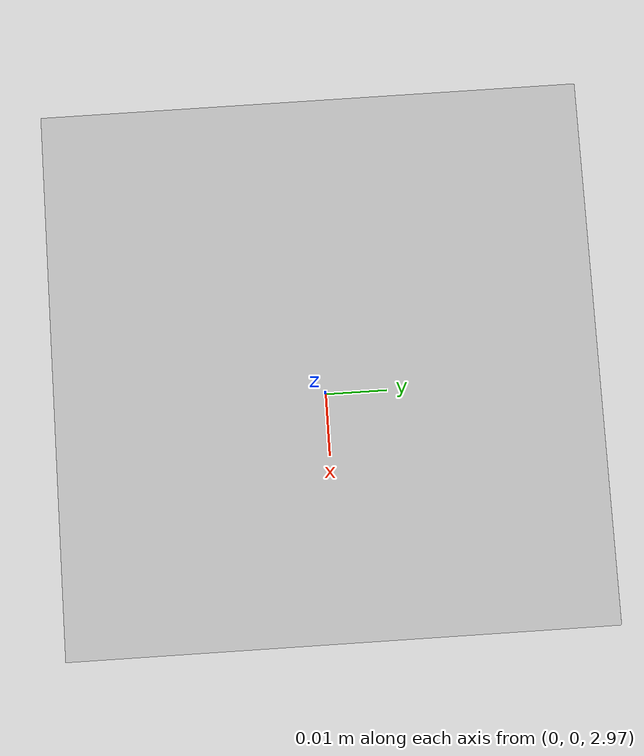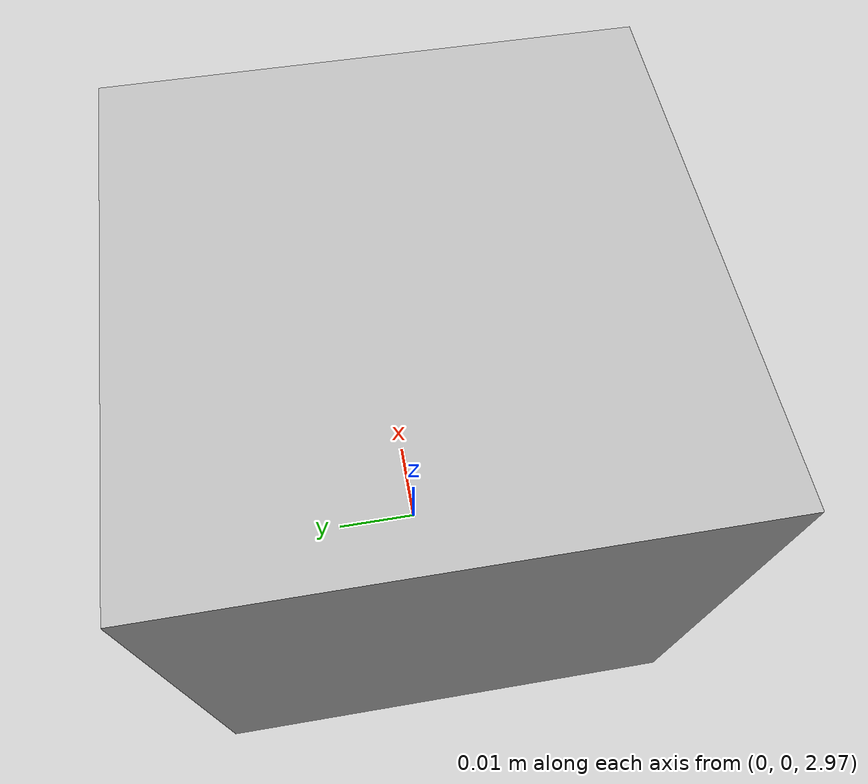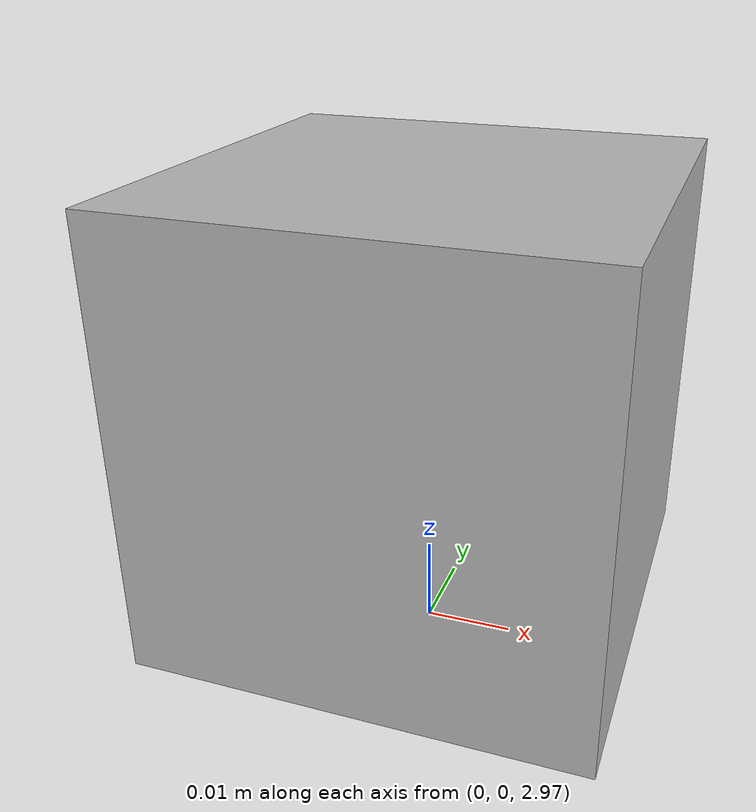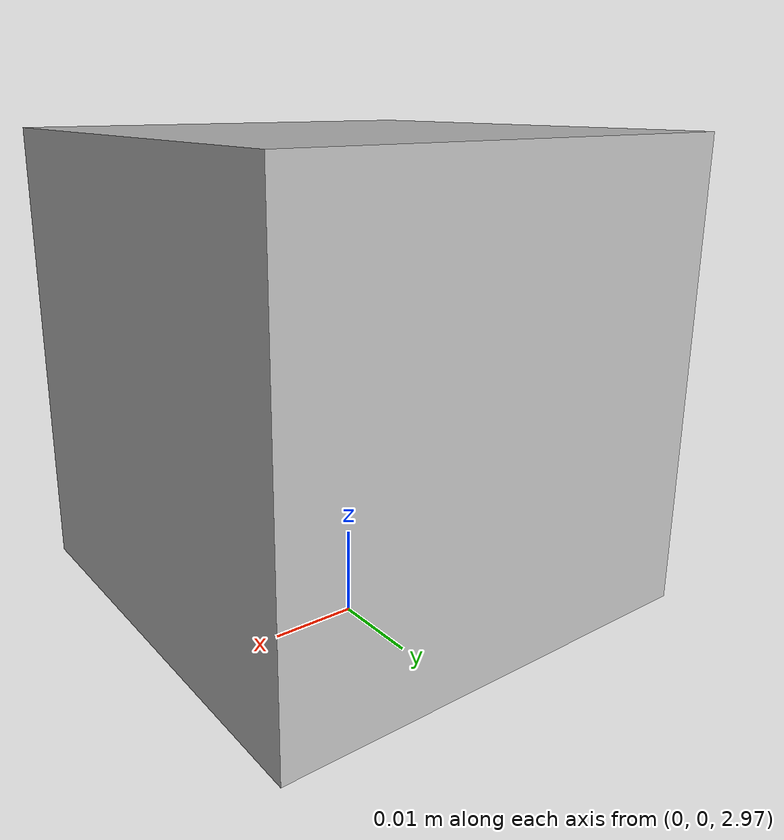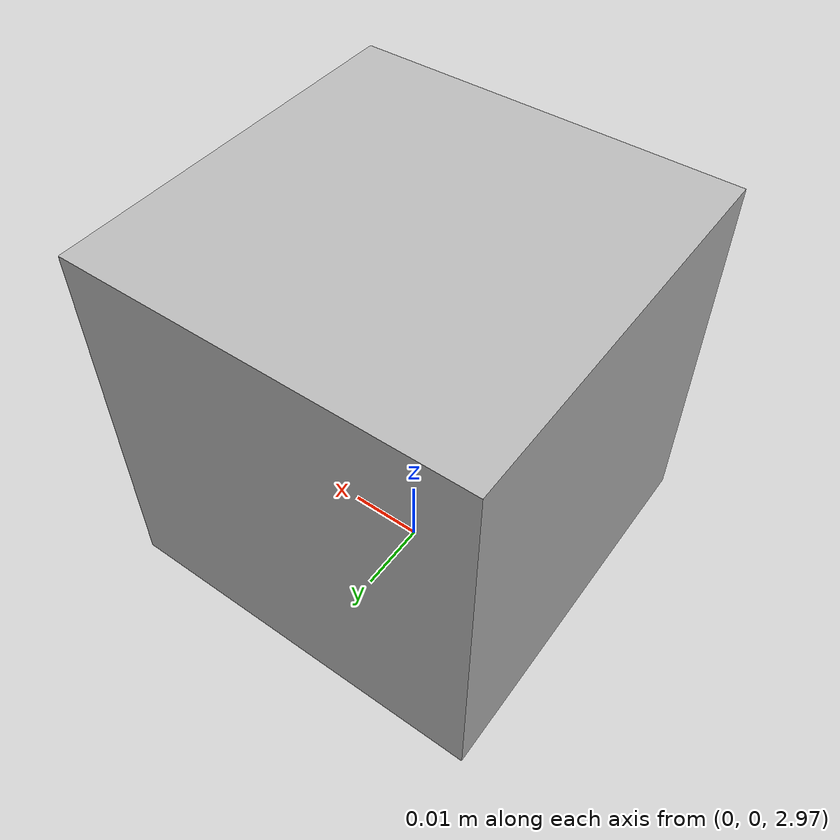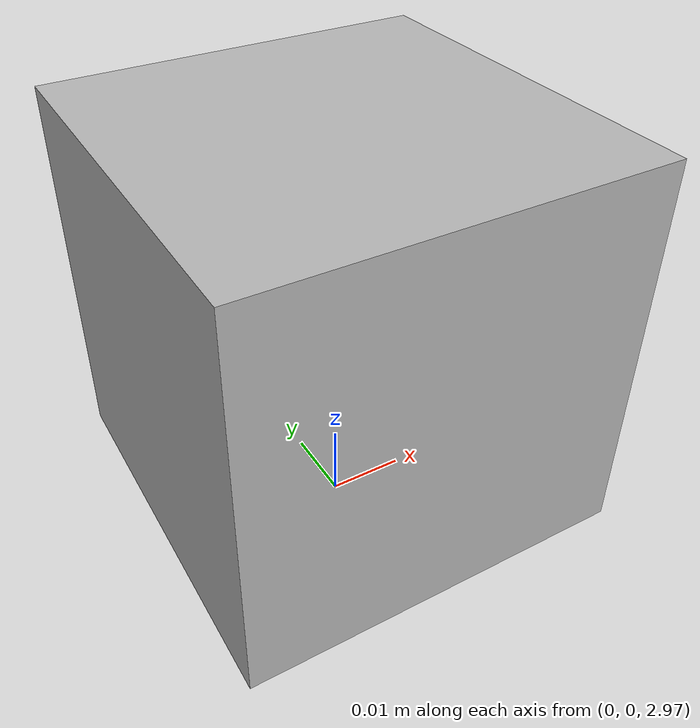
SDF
<?xml version="1.0"?>
<sdf version="1.4">
  <world name="arena">
    <!-- Ground plane -->
    <include>
      <uri>model://ground_plane</uri>
    </include>

    <!-- Light source -->
    <include>
      <uri>model://sun</uri>
    </include>

    <!-- External camera sensor -->
    <model name="external_camera">
      <!-- x y z roll pitch yaw -->
      <!-- Камера сверху, смотрит вниз на робота -->
      <pose>0 0 3.0 0 1.5708 0</pose> <!-- x=0, y=0, z=3.0 (выше), pitch=1.5708 (~90° вниз) -->
      <static>true</static>

      <link name="camera_link">
        <visual name="camera_visual">
          <geometry>
            <box>
              <size>0.05 0.05 0.05</size>
            </box>
          </geometry>
        </visual>

        <!-- Camera sensor -->
        <sensor name="camera" type="camera">
          <!-- Явно включаем сенсор и его визуализацию -->
          <always_on>true</always_on>
          <visualize>true</visualize>

          <update_rate>30</update_rate>
          <camera>
            <horizontal_fov>1.047</horizontal_fov> <!-- ~60 degrees -->
            <image>
              <width>640</width>
              <height>480</height>
              <format>R8G8B8</format>
            </image>
            <clip>
              <near>0.05</near>
              <far>10</far>
            </clip>
          </camera>

          <plugin name="camera_controller" filename="libgazebo_ros_camera.so">
            <ros>
              <namespace>/camera</namespace>
            </ros>
            <camera_name>camera</camera_name>
            <cameraName>camera</cameraName>
            <frame_name>camera_link</frame_name>
            <hack_baseline>0.07</hack_baseline>
            <min_depth>0.05</min_depth>
            <max_depth>10.0</max_depth>
            <!-- Publish both image_raw and camera_info -->
            <image_topic>image_raw</image_topic>
            <camera_info_topic>camera_info</camera_info_topic>
          </plugin>
        </sensor>
      </link>
    </model>
  </world>
</sdf>
